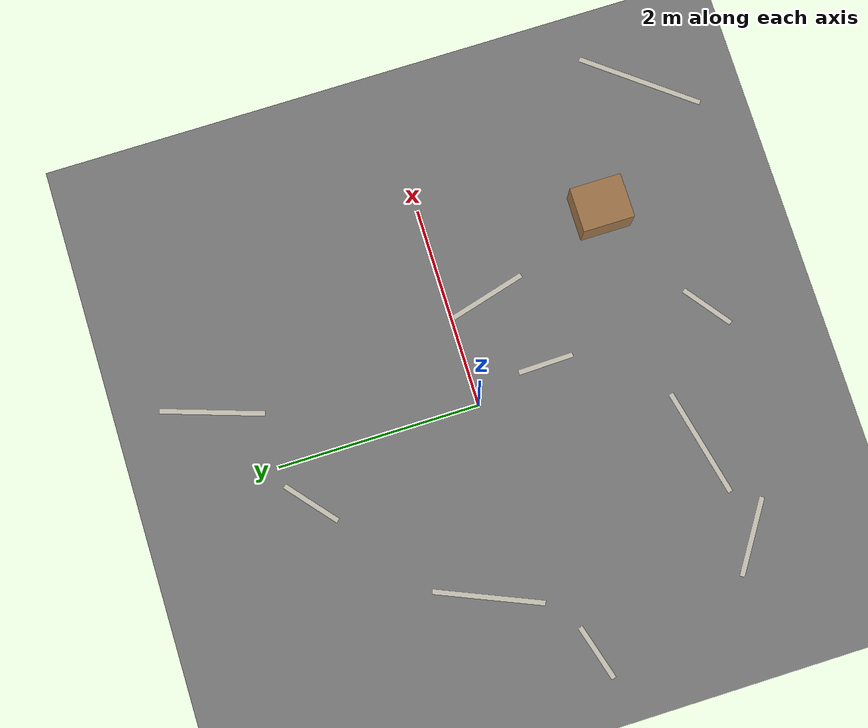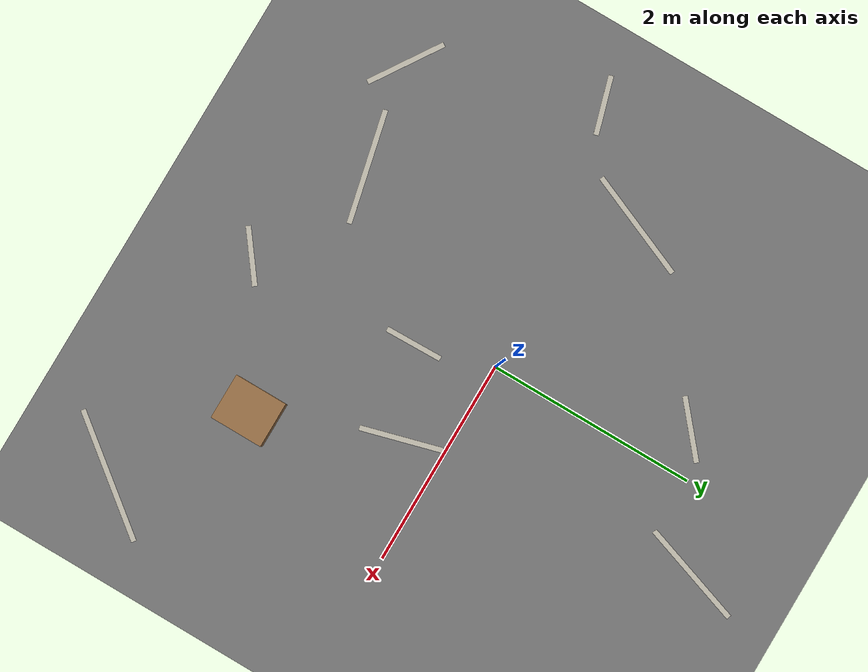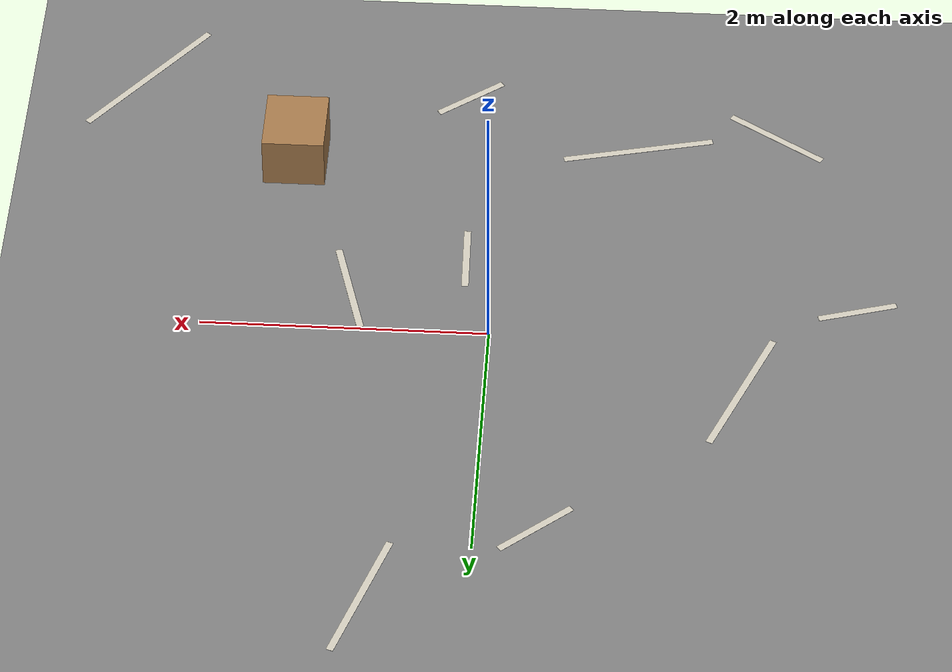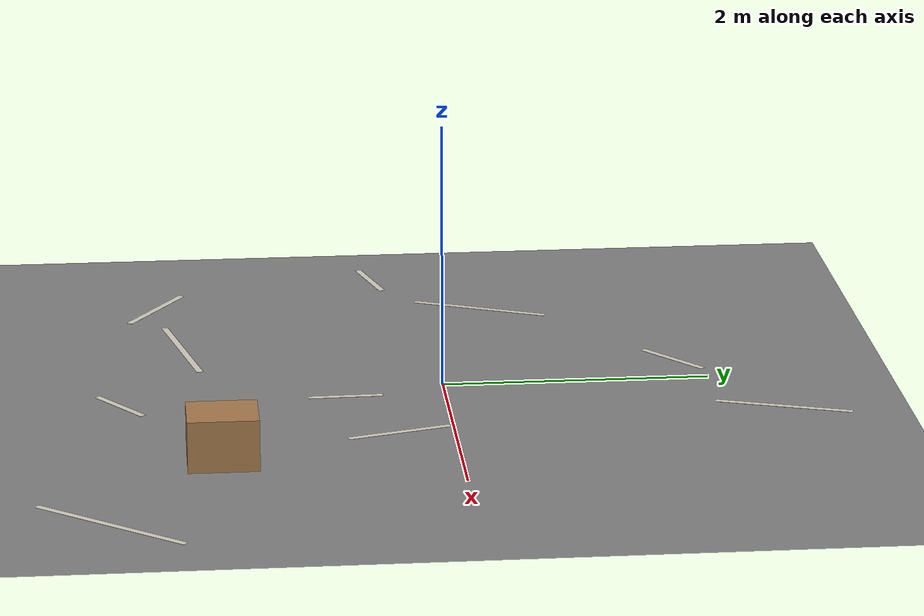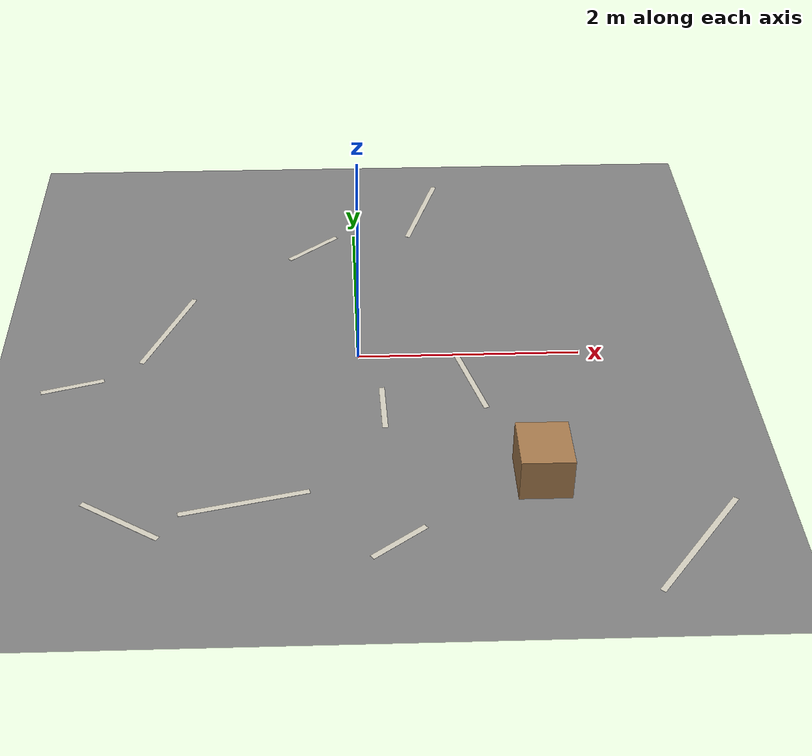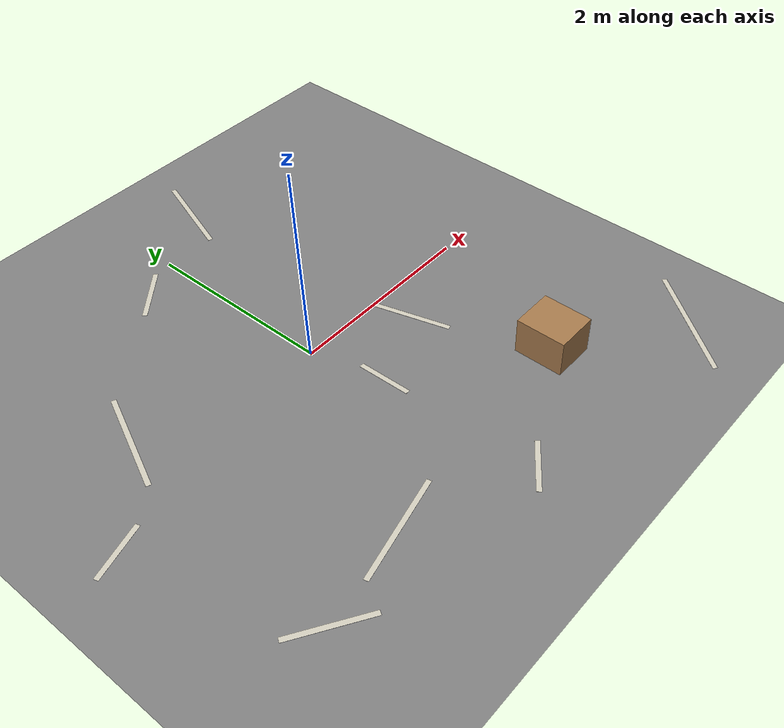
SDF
<sdf version="1.9">
 <world name="ecps295_lowbox_s43">
  <model name="ground_plane">
   <static>true</static>
   <link name="link">
    <collision name="collision">
     <geometry><plane><normal>0 0 1</normal><size>50 50</size></plane></geometry>
    </collision>
    <visual name="visual">
     <geometry><plane><normal>0 0 1</normal><size>50 50</size></plane></geometry>
     <material><ambient>0.5 0.5 0.5 1</ambient><diffuse>0.5 0.5 0.5 1</diffuse></material>
    </visual>
   </link>
  </model>
  <model name="floor_tape">
   <static>true</static>
   <link name="link">
    <visual name="tape0">
     <pose>-0.969 -1.920 0.003 0 0 0.2276</pose>
     <geometry><box><size>1.086 0.050 0.001</size></box></geometry>
     <material><ambient>0.82 0.80 0.74 1</ambient><diffuse>0.82 0.80 0.74 1</diffuse></material>
    </visual>
    <visual name="tape1">
     <pose>0.197 -0.739 0.003 0 0 1.5942</pose>
     <geometry><box><size>0.552 0.050 0.001</size></box></geometry>
     <material><ambient>0.82 0.80 0.74 1</ambient><diffuse>0.82 0.80 0.74 1</diffuse></material>
    </visual>
    <visual name="tape2">
     <pose>-2.544 -0.365 0.003 0 0 0.2850</pose>
     <geometry><box><size>0.563 0.050 0.001</size></box></geometry>
     <material><ambient>0.82 0.80 0.74 1</ambient><diffuse>0.82 0.80 0.74 1</diffuse></material>
    </visual>
    <visual name="tape3">
     <pose>-0.415 1.798 0.003 0 0 0.7013</pose>
     <geometry><box><size>0.611 0.050 0.001</size></box></geometry>
     <material><ambient>0.82 0.80 0.74 1</ambient><diffuse>0.82 0.80 0.74 1</diffuse></material>
    </visual>
    <visual name="tape4">
     <pose>0.701 2.462 0.003 0 0 1.2462</pose>
     <geometry><box><size>1.019 0.050 0.001</size></box></geometry>
     <material><ambient>0.82 0.80 0.74 1</ambient><diffuse>0.82 0.80 0.74 1</diffuse></material>
    </visual>
    <visual name="tape5">
     <pose>2.619 -2.494 0.003 0 0 0.9098</pose>
     <geometry><box><size>1.273 0.050 0.001</size></box></geometry>
     <material><ambient>0.82 0.80 0.74 1</ambient><diffuse>0.82 0.80 0.74 1</diffuse></material>
    </visual>
    <visual name="tape6">
     <pose>-1.957 -2.102 0.003 0 0 2.5639</pose>
     <geometry><box><size>0.778 0.050 0.001</size></box></geometry>
     <material><ambient>0.82 0.80 0.74 1</ambient><diffuse>0.82 0.80 0.74 1</diffuse></material>
    </visual>
    <visual name="tape7">
     <pose>-1.756 0.449 0.003 0 0 1.1699</pose>
     <geometry><box><size>1.075 0.050 0.001</size></box></geometry>
     <material><ambient>0.82 0.80 0.74 1</ambient><diffuse>0.82 0.80 0.74 1</diffuse></material>
    </visual>
    <visual name="tape8">
     <pose>0.263 -2.405 0.003 0 0 0.6470</pose>
     <geometry><box><size>0.554 0.050 0.001</size></box></geometry>
     <material><ambient>0.82 0.80 0.74 1</ambient><diffuse>0.82 0.80 0.74 1</diffuse></material>
    </visual>
    <visual name="tape9">
     <pose>0.992 -0.398 0.003 0 0 1.8396</pose>
     <geometry><box><size>0.783 0.050 0.001</size></box></geometry>
     <material><ambient>0.82 0.80 0.74 1</ambient><diffuse>0.82 0.80 0.74 1</diffuse></material>
    </visual>
   </link>
  </model>
  <model name="lb0">
   <static>true</static>
   <pose>1.47 -1.69 0.189 0 0 0</pose>
   <link name="link">
    <collision name="c"><geometry><box><size>0.44 0.51 0.38</size></box></geometry></collision>
    <visual name="v">
     <geometry><box><size>0.44 0.51 0.38</size></box></geometry>
     <material><ambient>0.65 0.48 0.30 1</ambient><diffuse>0.65 0.48 0.30 1</diffuse></material>
    </visual>
   </link>
  </model>
 </world>
</sdf>
